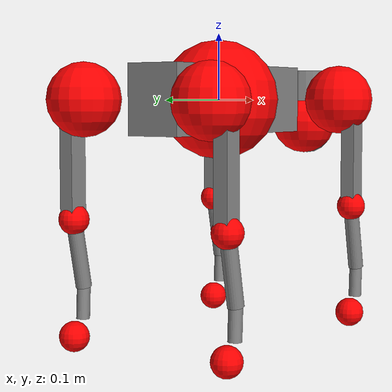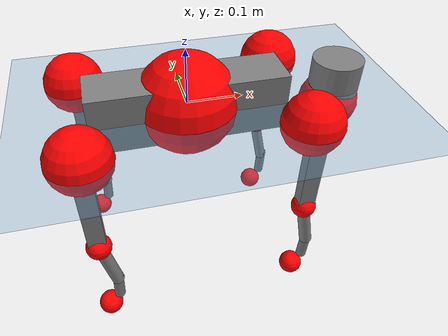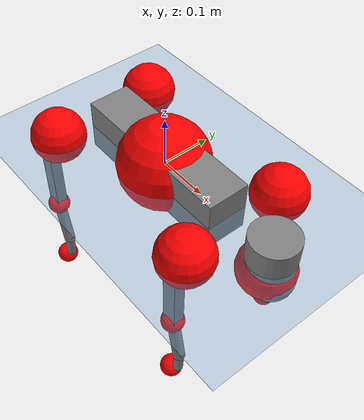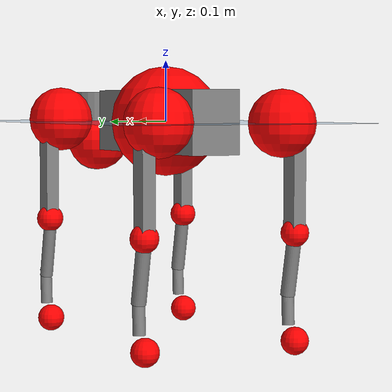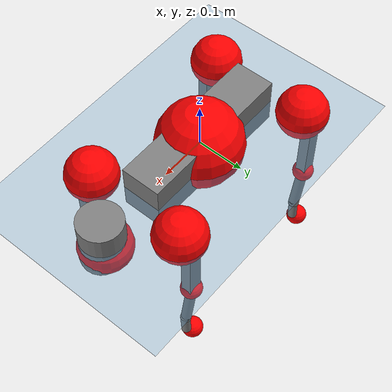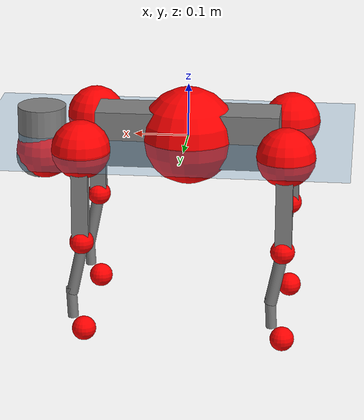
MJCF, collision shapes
<mujoco model="go2">
  <compiler angle="radian" assetdir="assets" balanceinertia="true" inertiafromgeom="false"/>

  <option timestep="0.005" density="1.2" viscosity="2e-05"/>

  <size nkey="1"/>

  <visual>
    <quality shadowsize="8192"/>
    <map shadowclip="0.5"/>
  </visual>

  <default>
    <default class="/">
      <geom contype="0" conaffinity="0" group="1" solref="-1000 -80"/>
      <site size="0.01 0.005 0.005" group="5"/>
      <general forcelimited="true" biastype="affine" gainprm="20" biasprm="0 -20 -0.5"/>
      <default class="go2">
        <joint armature="0.01" damping="0.01" frictionloss="0.2"/>
        <geom condim="1" margin="0.001"/>
        <default class="visual">
          <geom type="mesh" group="2"/>
        </default>
        <default class="collision">
          <geom group="3"/>
          <default class="foot">
            <geom size="0.022 0 0" condim="6" priority="1" friction="0.8 0.02 0.01" solimp="0.015 1 0.022"/>
          </default>
        </default>
        <default class="reward_collision_sphere">
          <geom group="5" rgba="1 0 0 1"/>
        </default>
      </default>
    </default>
  </default>

  <asset>
    <texture type="skybox" colorspace="auto" name="//unnamed_texture_0" builtin="gradient" rgb1="0.95 0.95 0.95" rgb2="0.95 0.95 0.95" width="100" height="600"/>
    <texture type="2d" colorspace="auto" name="texplane" builtin="checker" rgb1="0.345 0.575 0.748" rgb2="0.345 0.575 0.748" markrgb="1 1 1" width="512" height="512"/>
    <material name="MatPlane" class="/" texture="texplane" texuniform="true" texrepeat="2 2" specular="0.9"/>
    <material name="metal" class="/" rgba="0.9 0.95 0.95 1"/>
    <material name="black" class="/" rgba="0 0 0 1"/>
    <material name="white" class="/"/>
    <material name="gray" class="/" rgba="0.671705 0.692426 0.77427 1"/>
    <mesh name="base_0" class="/" file="base_0.obj"/>
    <mesh name="base_1" class="/" file="base_1.obj"/>
    <mesh name="base_2" class="/" file="base_2.obj"/>
    <mesh name="base_3" class="/" file="base_3.obj"/>
    <mesh name="base_4" class="/" file="base_4.obj"/>
    <mesh name="hip_0" class="/" file="hip_0.obj"/>
    <mesh name="hip_1" class="/" file="hip_1.obj"/>
    <mesh name="thigh_0" class="/" file="thigh_0.obj"/>
    <mesh name="thigh_1" class="/" file="thigh_1.obj"/>
    <mesh name="thigh_mirror_0" class="/" file="thigh_mirror_0.obj"/>
    <mesh name="thigh_mirror_1" class="/" file="thigh_mirror_1.obj"/>
    <mesh name="calf_0" class="/" file="calf_0.obj"/>
    <mesh name="calf_1" class="/" file="calf_1.obj"/>
    <mesh name="calf_mirror_0" class="/" file="calf_mirror_0.obj"/>
    <mesh name="calf_mirror_1" class="/" file="calf_mirror_1.obj"/>
    <mesh name="foot" class="/" file="foot.obj"/>
  </asset>

  <worldbody>
    <geom name="floor" class="/" size="100 100 0.125" type="plane" group="0" material="MatPlane"/>
    <light name="toplight_shadow" class="/" pos="0 0 5" dir="0.0990148 0.0990148 -0.990148" type="directional" ambient="0.04 0.04 0.04" diffuse="0.55 0.55 0.55" specular="0.12 0.12 0.12"/>
    <light name="toplight_fill" class="/" pos="0 0 5" dir="0.0990148 0.0990148 -0.990148" type="directional" castshadow="false" ambient="0.04 0.04 0.04" diffuse="0.3 0.3 0.3" specular="0.08 0.08 0.08"/>
    <body name="trunk" childclass="go2" pos="-0.000291648 -0.000105916 0.000864625" quat="1 2.39756e-05 -8.70576e-05 -3.43816e-05">
      <inertial pos="0.0209853 0.000458895 -0.00474349" quat="0.000198116 0.713006 -0.0018816 0.701155" mass="5.05484" diaginertia="0.0888105 0.0698699 0.00860668"/>
      <joint name="//unnamed_joint_0" type="free" armature="0" damping="0" frictionloss="0"/>
      <geom name="//unnamed_geom_1" class="visual" material="black" mesh="base_0"/>
      <geom name="//unnamed_geom_2" class="visual" material="black" mesh="base_1"/>
      <geom name="//unnamed_geom_3" class="visual" material="black" mesh="base_2"/>
      <geom name="//unnamed_geom_4" class="visual" material="white" mesh="base_3"/>
      <geom name="//unnamed_geom_5" class="visual" material="gray" mesh="base_4"/>
      <geom name="trunk_1" class="collision" size="0.170125 0.0422824 0.0515529" type="box"/>
      <geom name="trunk_2" class="collision" size="0.0452219 0.0406997" pos="0.27514 0 0.00812228" type="cylinder"/>
      <geom name="trunk_3" class="collision" size="0.0425086" pos="0.282863 0 -0.0487337"/>
      <geom name="//unnamed_geom_9" class="reward_collision_sphere" size="0.0904437"/>
      <geom name="//unnamed_geom_10" class="reward_collision_sphere" size="0.0542662" pos="0.270313 0 -0.0365503"/>
      <site name="imu" pos="-0.0264018 -4.24272e-05 0.0324402" size="0.00904437"/>
      <camera name="track" pos="0 -1.87136 0" quat="0.707107 0.707107 0 0" mode="trackcom"/>
      <camera name="ego_camera" pos="0.301206 0 0.0365503" quat="-0.5 -0.5 0.5 0.5"/>
      <body name="FL_hip" pos="0.186542 0.0432318 0.00200876" quat="1 2.09921e-05 -5.8627e-06 7.3147e-05">
        <inertial pos="-0.00536831 0.00228368 0.000149653" quat="0.497897 0.502007 0.503239 0.496829" mass="0.502984" diaginertia="0.000742142 0.000426829 0.000170292"/>
        <joint name="FL_hip_joint" pos="0 0 0" axis="0.999998 0.00201466 0.000443395" range="-1.04256 1.0354" armature="0.00905907" damping="0.00234252" frictionloss="0.178328"/>
        <geom name="//unnamed_geom_11" class="visual" material="metal" mesh="hip_0"/>
        <geom name="//unnamed_geom_12" class="visual" material="gray" mesh="hip_1"/>
        <geom name="//unnamed_geom_13" class="collision" size="0.0416041 0.0180887" pos="0 0.0748544 0" quat="0.707107 0.707107 0 0" type="cylinder"/>
        <geom name="//unnamed_geom_14" class="reward_collision_sphere" size="0.0542662" pos="0 0.0654976 0"/>
        <body name="FL_thigh" pos="-0.000663663 0.088284 0.00134553" quat="1 -0.000212004 -8.08196e-05 -0.000211215">
          <inertial pos="-0.00408855 -0.0206111 -0.0267357" quat="0.828639 0.0835539 -0.0194948 0.553169" mass="0.840881" diaginertia="0.00498614 0.00417412 0.000308587"/>
          <joint name="FL_thigh_joint" pos="0 0 0" axis="0.00214484 0.999997 -0.000691335" stiffness="0.00585429" range="-1.57884 3.50304" armature="0.00914076" damping="0.00404178" frictionloss="0.184283"/>
          <geom name="//unnamed_geom_15" class="visual" material="metal" mesh="thigh_0"/>
          <geom name="//unnamed_geom_16" class="visual" material="gray" mesh="thigh_1"/>
          <geom name="//unnamed_geom_17" class="collision" size="0.0963226 0.0110794 0.0153754" pos="0 0 -0.0865023" quat="0.707107 0 0.707107 0" type="box"/>
          <body name="FL_calf" pos="-0.00162413 -0.000617161 -0.173178" quat="1 -0.000315694 -0.00021267 -0.000167592">
            <inertial pos="0.00571566 -0.000440588 -0.11469" quat="0.711157 0.00381293 -0.00452513 0.703008" mass="0.180104" diaginertia="0.00125918 0.00105251 1.88343e-05"/>
            <joint name="FL_calf_joint" pos="0 0 0" axis="0.0016094 0.999993 0.00329088" stiffness="0.0009153" range="-2.70634 -0.837865" armature="0.0087297" damping="0.00495153" frictionloss="0.173371"/>
            <geom name="//unnamed_geom_18" class="visual" material="gray" mesh="calf_0"/>
            <geom name="//unnamed_geom_19" class="visual" material="black" mesh="calf_1"/>
            <geom name="FL_calf0" class="collision" size="0.0108532 0.0542662" pos="0.00772323 0 -0.0487337" quat="0.994493 0 -0.104807 0" type="cylinder"/>
            <geom name="//unnamed_geom_21" class="collision" size="0.00994881 0.0293942" pos="0.0193081 0 -0.12021" quat="0.999688 0 0.0249974 0" type="cylinder"/>
            <geom name="//unnamed_geom_22" class="visual" pos="0 0 -0.173005" quat="1 0 0 0" material="black" mesh="foot"/>
            <geom name="FL_foot" class="foot" size="0.0173604" pos="-0.00193081 0 -0.173005"/>
            <geom name="//unnamed_geom_24" class="reward_collision_sphere" size="0.0226109"/>
            <geom name="//unnamed_geom_25" class="reward_collision_sphere" size="0.0226109" pos="-0.00193081 0 -0.173005"/>
            <site name="FL_foot" class="foot" pos="-0.00193081 0 -0.173005" size="0.00904437"/>
          </body>
        </body>
      </body>
      <body name="FR_hip" pos="0.188136 -0.0424365 -9.03265e-05" quat="1 -1.93067e-05 3.85279e-06 2.28154e-05">
        <inertial pos="-0.00544465 -0.00141417 -0.000656619" quat="0.497572 0.505757 0.49958 0.497042" mass="0.493444" diaginertia="0.000736098 0.000419188 0.000167788"/>
        <joint name="FR_hip_joint" pos="0 0 0" axis="1 0.000616373 -0.000676134" stiffness="0.00404995" range="-1.04343 1.04957" armature="0.00927043" damping="0.0124934" frictionloss="0.184158"/>
        <geom name="//unnamed_geom_26" class="visual" pos="0 1.07547e-09 4.6129e-08" quat="4.63268e-05 1 0 0" material="metal" mesh="hip_0"/>
        <geom name="//unnamed_geom_27" class="visual" pos="0 1.74346e-09 -1.14095e-07" quat="4.63268e-05 1 0 0" material="gray" mesh="hip_1"/>
        <geom name="//unnamed_geom_28" class="collision" size="0.0416041 0.0180887" pos="0 -0.0748544 0" quat="0.707107 0.707107 0 0" type="cylinder"/>
        <geom name="//unnamed_geom_29" class="reward_collision_sphere" size="0.0542662" pos="0 -0.0654976 0"/>
        <body name="FR_thigh" pos="0.000601397 -0.0891845 0.00117341" quat="1 -6.48913e-05 5.56087e-05 9.32882e-05">
          <inertial pos="-0.00356156 0.0209896 -0.0261482" quat="0.552571 -0.0206629 0.0826822 0.829097" mass="0.861086" diaginertia="0.00502061 0.00418609 0.000312209"/>
          <joint name="FR_thigh_joint" pos="0 0 0" axis="0.00188397 -0.999998 -0.00080164" range="-3.48618 1.55332" armature="0.0090707" damping="0.0121927" frictionloss="0.187409"/>
          <geom name="//unnamed_geom_30" class="visual" material="metal" mesh="thigh_mirror_0"/>
          <geom name="//unnamed_geom_31" class="visual" material="gray" mesh="thigh_mirror_1"/>
          <geom name="//unnamed_geom_32" class="collision" size="0.0963226 0.0110794 0.0153754" pos="0 0 -0.0865023" quat="0.707107 0 0.707107 0" type="box"/>
          <body name="FR_calf" pos="-0.000524838 -0.000157099 -0.172294" quat="1 -4.41721e-05 2.53214e-05 4.67152e-05">
            <inertial pos="0.0061899 0.000893982 -0.115314" quat="0.705631 -0.00653879 0.00054912 0.708549" mass="0.178233" diaginertia="0.0012453 0.00105834 1.87325e-05"/>
            <joint name="FR_calf_joint" pos="0 0 0" axis="-0.000490473 -0.999994 -0.00357144" range="0.851301 2.70466" armature="0.00890844" damping="0.00855721" frictionloss="0.179811"/>
            <geom name="//unnamed_geom_33" class="visual" material="gray" mesh="calf_mirror_0"/>
            <geom name="//unnamed_geom_34" class="visual" material="black" mesh="calf_mirror_1"/>
            <geom name="FR_calf0" class="collision" size="0.0117577 0.0542662" pos="0.00965404 0 -0.0487337" quat="0.995004 0 -0.0998334 0" type="cylinder"/>
            <geom name="//unnamed_geom_36" class="collision" size="0.00994881 0.0293942" pos="0.0193081 0 -0.12021" quat="0.999688 0 0.0249974 0" type="cylinder"/>
            <geom name="//unnamed_geom_37" class="visual" pos="0 0 -0.173005" quat="1 0 0 0" material="black" mesh="foot"/>
            <geom name="FR_foot" class="foot" size="0.020562" pos="-0.00193081 0 -0.173005"/>
            <geom name="//unnamed_geom_39" class="reward_collision_sphere" size="0.0226109"/>
            <geom name="//unnamed_geom_40" class="reward_collision_sphere" size="0.0226109" pos="-0.00193081 0 -0.173005"/>
            <site name="FR_foot" class="foot" pos="-0.00193081 0 -0.173005" size="0.00904437"/>
          </body>
        </body>
      </body>
      <body name="RL_hip" pos="-0.187089 0.0432342 -6.5657e-06" quat="1 8.77861e-05 -0.000106715 0.000244009">
        <inertial pos="0.00491633 0.00201842 -0.000365576" quat="0.502601 0.497521 0.498035 0.501823" mass="0.499833" diaginertia="0.000744408 0.000431235 0.000171632"/>
        <joint name="RL_hip_joint" pos="0 0 0" axis="-0.999807 -0.0196026 -0.00120354" range="-1.0454 1.03221" armature="0.00919763" damping="0.0168522" frictionloss="0.181008"/>
        <geom name="//unnamed_geom_41" class="visual" pos="-1.3344e-09 0 -2.61573e-07" quat="4.63268e-05 0 1 0" material="metal" mesh="hip_0"/>
        <geom name="//unnamed_geom_42" class="visual" pos="-2.16322e-09 0 -2.31978e-07" quat="4.63268e-05 0 1 0" material="gray" mesh="hip_1"/>
        <geom name="//unnamed_geom_43" class="collision" size="0.0416041 0.0180887" pos="0 0.0748544 0" quat="0.707107 0.707107 0 0" type="cylinder"/>
        <geom name="//unnamed_geom_44" class="reward_collision_sphere" size="0.0542662" pos="0 0.0654976 0"/>
        <body name="RL_thigh" pos="0.000817655 0.0886351 -0.00111846" quat="1 -7.79854e-06 -2.90621e-06 -4.52652e-06">
          <inertial pos="-0.00361929 -0.021317 -0.0265715" quat="0.829377 0.0838368 -0.0189653 0.552037" mass="0.851811" diaginertia="0.00499105 0.00422836 0.00031189"/>
          <joint name="RL_thigh_joint" pos="0 0 0" axis="-0.000155943 1 -0.000624901" range="-0.519804 4.54037" armature="0.00929189" damping="0.0119773" frictionloss="0.182276"/>
          <geom name="//unnamed_geom_45" class="visual" material="metal" mesh="thigh_0"/>
          <geom name="//unnamed_geom_46" class="visual" material="gray" mesh="thigh_1"/>
          <geom name="//unnamed_geom_47" class="collision" size="0.0963226 0.0110794 0.0153754" pos="0 0 -0.0865023" quat="0.707107 0 0.707107 0" type="box"/>
          <body name="RL_calf" pos="0.00109013 -0.00038695 -0.173185" quat="1 -8.00676e-06 -6.24207e-05 8.59077e-05">
            <inertial pos="0.00611456 -0.000424833 -0.114568" quat="0.710039 0.00451635 -0.00539472 0.704128" mass="0.178205" diaginertia="0.00124346 0.00104639 1.86665e-05"/>
            <joint name="RL_calf_joint" pos="0 0 0" axis="0.00915881 0.999942 -0.00572808" range="-2.72041 -0.836089" armature="0.00938409" damping="0.00186363" frictionloss="0.173215"/>
            <geom name="//unnamed_geom_48" class="visual" material="gray" mesh="calf_0"/>
            <geom name="//unnamed_geom_49" class="visual" material="black" mesh="calf_1"/>
            <geom name="RL_calf0" class="collision" size="0.0117577 0.0542662" pos="0.00965404 0 -0.0487337" quat="0.995004 0 -0.0998334 0" type="cylinder"/>
            <geom name="//unnamed_geom_51" class="collision" size="0.00994881 0.0293942" pos="0.0193081 0 -0.12021" quat="0.999688 0 0.0249974 0" type="cylinder"/>
            <geom name="//unnamed_geom_52" class="visual" pos="0 0 -0.173005" quat="1 0 0 0" material="black" mesh="foot"/>
            <geom name="RL_foot" class="foot" size="0.0180825" pos="-0.00193081 0 -0.173005"/>
            <geom name="//unnamed_geom_54" class="reward_collision_sphere" size="0.0226109"/>
            <geom name="//unnamed_geom_55" class="reward_collision_sphere" size="0.0226109" pos="-0.00193081 0 -0.173005"/>
            <site name="RL_foot" class="foot" pos="-0.00193081 0 -0.173005" size="0.00904437"/>
          </body>
        </body>
      </body>
      <body name="RR_hip" pos="-0.186926 -0.0443623 -0.00186795" quat="1 6.88087e-06 -0.000233369 -0.000238311">
        <inertial pos="0.00522251 -0.00194097 -0.000453185" quat="0.497796 0.497087 0.499947 0.50513" mass="0.50517" diaginertia="0.000745086 0.000429966 0.000170456"/>
        <joint name="RR_hip_joint" pos="0 0 0" axis="-0.999999 0.00134471 -0.000267156" stiffness="0.00201873" range="-1.0355 1.0541" armature="0.00905651" damping="0.00760324" frictionloss="0.17979"/>
        <geom name="//unnamed_geom_56" class="visual" pos="1.33337e-09 1.07547e-09 -3.07702e-07" quat="2.14617e-09 4.63268e-05 4.63268e-05 -1" material="metal" mesh="hip_0"/>
        <geom name="//unnamed_geom_57" class="visual" pos="2.16577e-09 1.74346e-09 -1.17884e-07" quat="2.14617e-09 4.63268e-05 4.63268e-05 -1" material="gray" mesh="hip_1"/>
        <geom name="//unnamed_geom_58" class="collision" size="0.0416041 0.0180887" pos="0 -0.0748544 0" quat="0.707107 0.707107 0 0" type="cylinder"/>
        <geom name="//unnamed_geom_59" class="reward_collision_sphere" size="0.0542662" pos="0 -0.0654976 0"/>
        <body name="RR_thigh" pos="0.000139118 -0.0895002 -0.00126795" quat="1 0.000247073 0.000235468 -0.000109141">
          <inertial pos="-0.00432169 0.0205689 -0.0263109" quat="0.551629 -0.0200501 0.0847031 0.829535" mass="0.844659" diaginertia="0.00498809 0.00416377 0.000310289"/>
          <joint name="RR_thigh_joint" pos="0 0 0" axis="-0.00422422 -0.999991 0.000841474" range="-4.53968 0.522759" armature="0.00908685" damping="0.0145261" frictionloss="0.17966"/>
          <geom name="//unnamed_geom_60" class="visual" material="metal" mesh="thigh_mirror_0"/>
          <geom name="//unnamed_geom_61" class="visual" material="gray" mesh="thigh_mirror_1"/>
          <geom name="//unnamed_geom_62" class="collision" size="0.0963226 0.0110794 0.0153754" pos="0 0 -0.0865023" quat="0.707107 0 0.707107 0" type="box"/>
          <body name="RR_calf" pos="0.000992492 -0.00147976 -0.173318" quat="1 -0.000230493 -5.20095e-05 0.000261912">
            <inertial pos="0.00598568 0.000556064 -0.115192" quat="0.704799 -0.00665727 0.00191701 0.709374" mass="0.17756" diaginertia="0.00125591 0.00103753 1.8713e-05"/>
            <joint name="RR_calf_joint" pos="0 0 0" axis="-0.00291218 -0.999989 0.0037153" range="0.832474 2.71831" armature="0.00897531" damping="0.00993206" frictionloss="0.181123"/>
            <geom name="//unnamed_geom_63" class="visual" material="gray" mesh="calf_mirror_0"/>
            <geom name="//unnamed_geom_64" class="visual" material="black" mesh="calf_mirror_1"/>
            <geom name="RR_calf0" class="collision" size="0.0117577 0.0542662" pos="0.00965404 0 -0.0487337" quat="0.995004 0 -0.0998334 0" type="cylinder"/>
            <geom name="//unnamed_geom_66" class="collision" size="0.00994881 0.0293942" pos="0.0193081 0 -0.12021" quat="0.999688 0 0.0249974 0" type="cylinder"/>
            <geom name="//unnamed_geom_67" class="visual" pos="0 0 -0.173005" quat="1 0 0 0" material="black" mesh="foot"/>
            <geom name="RR_foot" class="foot" size="0.0219385" pos="-0.00193081 0 -0.173005"/>
            <geom name="//unnamed_geom_69" class="reward_collision_sphere" size="0.0226109"/>
            <geom name="//unnamed_geom_70" class="reward_collision_sphere" size="0.0226109" pos="-0.00193081 0 -0.173005"/>
            <site name="RR_foot" class="foot" pos="-0.00193081 0 -0.173005" size="0.00904437"/>
          </body>
        </body>
      </body>
    </body>
  </worldbody>

  <contact>
    <pair class="/" geom1="floor" geom2="FL_foot" name="//unnamed_contact_0"/>
    <pair class="/" geom1="floor" geom2="FR_foot" name="//unnamed_contact_1"/>
    <pair class="/" geom1="floor" geom2="RL_foot" name="//unnamed_contact_2"/>
    <pair class="/" geom1="floor" geom2="RR_foot" name="//unnamed_contact_3"/>
  </contact>

  <actuator>
    <general name="FL_hip" class="/" joint="FL_hip_joint" forcerange="-21.2738 21.2738" gainprm="18.3889" biasprm="0 -18.3889 -0.449301"/>
    <general name="FL_thigh" class="/" joint="FL_thigh_joint" forcerange="-22.1055 22.1055" gainprm="18.3889" biasprm="0 -18.3889 -0.449301"/>
    <general name="FL_calf" class="/" joint="FL_calf_joint" forcerange="-40.1794 40.1794" gainprm="18.3889" biasprm="0 -18.3889 -0.449301"/>
    <general name="FR_hip" class="/" joint="FR_hip_joint" forcerange="-22.0551 22.0551" gainprm="18.3889" biasprm="0 -18.3889 -0.449301"/>
    <general name="FR_thigh" class="/" joint="FR_thigh_joint" forcerange="-21.0552 21.0552" gainprm="18.3889" biasprm="0 -18.3889 -0.449301"/>
    <general name="FR_calf" class="/" joint="FR_calf_joint" forcerange="-41.6103 41.6103" gainprm="18.3889" biasprm="0 -18.3889 -0.449301"/>
    <general name="RL_hip" class="/" joint="RL_hip_joint" forcerange="-21.4013 21.4013" gainprm="18.3889" biasprm="0 -18.3889 -0.449301"/>
    <general name="RL_thigh" class="/" joint="RL_thigh_joint" forcerange="-21.7456 21.7456" gainprm="18.3889" biasprm="0 -18.3889 -0.449301"/>
    <general name="RL_calf" class="/" joint="RL_calf_joint" forcerange="-40.3086 40.3086" gainprm="18.3889" biasprm="0 -18.3889 -0.449301"/>
    <general name="RR_hip" class="/" joint="RR_hip_joint" forcerange="-21.3208 21.3208" gainprm="18.3889" biasprm="0 -18.3889 -0.449301"/>
    <general name="RR_thigh" class="/" joint="RR_thigh_joint" forcerange="-21.3431 21.3431" gainprm="18.3889" biasprm="0 -18.3889 -0.449301"/>
    <general name="RR_calf" class="/" joint="RR_calf_joint" forcerange="-40.5394 40.5394" gainprm="18.3889" biasprm="0 -18.3889 -0.449301"/>
  </actuator>

  <sensor>
    <gyro site="imu" name="imu_angular_velocity"/>
    <velocimeter site="imu" name="imu_linear_velocity"/>
    <framelinvel objtype="site" objname="FL_foot" name="FL_foot_global_linear_velocity"/>
    <framelinvel objtype="site" objname="FR_foot" name="FR_foot_global_linear_velocity"/>
    <framelinvel objtype="site" objname="RL_foot" name="RL_foot_global_linear_velocity"/>
    <framelinvel objtype="site" objname="RR_foot" name="RR_foot_global_linear_velocity"/>
  </sensor>

  <keyframe>
    <key name="home" qpos="0 0 0.325 1 0 0 0 0.1 0.8 -1.5 -0.1 -0.8 1.5 -0.1 0.8 -1.5 0.1 -0.8 1.5"/>
  </keyframe>
</mujoco>
